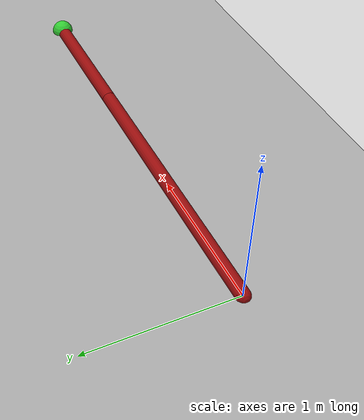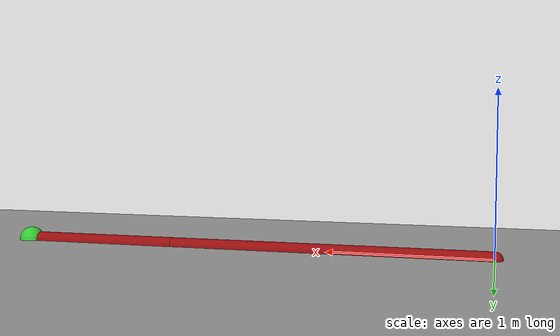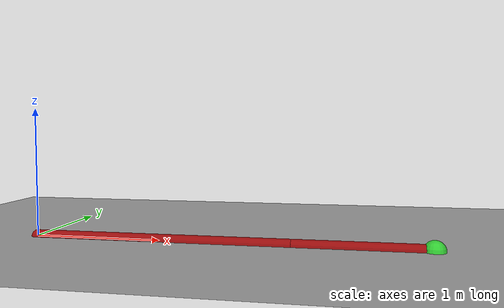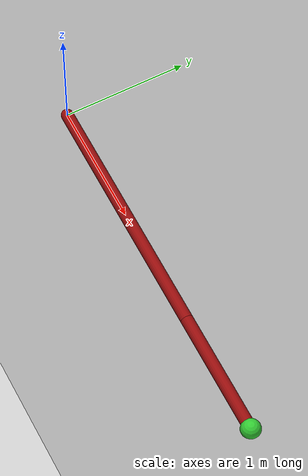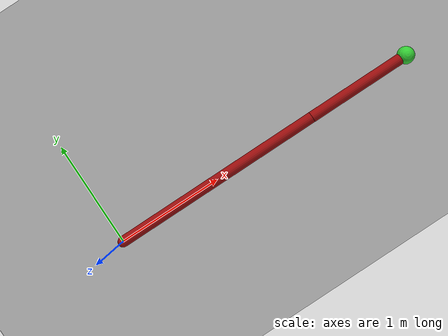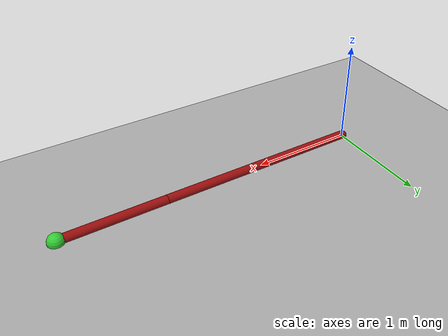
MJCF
<mujoco model="arm2d">
  <option integrator="RK4" timestep="0.002" gravity="0 0 0" viscosity="0.002"/>

  <visual>
    <global azimuth="120" elevation="-25" fovy="60" />
    <quality shadowsize="4096" offsamples="8" />
    <map znear="0.001" zfar="200" fogstart="6" fogend="30" />
  </visual>

  <asset>
    <texture name="sky" type="skybox" builtin="gradient" rgb1=".4 .6 .9" rgb2=".05 .05 .2"
             width="512" height="512"/>
    <texture name="floor_tex" type="2d" builtin="checker" width="512" height="512"
             rgb1="0.75 0.75 0.75" rgb2="0.55 0.55 0.55"/>
    <material name="floor_mat" texture="floor_tex" reflectance="0.15" shininess="0.4"/>
    <texture name="link_tex" type="cube" builtin="gradient" rgb1="0.8 0.1 0.1" rgb2="0.4 0.0 0.0"
            width="512" height="512"/>
    <material name="link_mat" texture="link_tex" specular="0.8" shininess="0.6" metallic="0.6"/>
    <material name="joint_mat" rgba="0.15 0.15 0.15 1.0" specular="0.2" shininess="0.4"/>
  </asset>

  <worldbody>
    <light pos="0 0 5" dir="0 0 -1" diffuse="0.8 0.8 0.8" specular="0.4 0.4 0.4"/>
    <light pos="-4 4 3" dir="0 -1 -0.5" diffuse="0.3 0.3 0.4" specular="0.2 0.2 0.3"/>
    <camera name="iso" pos="2.5 -4 3" quat="0.74 0.21 0.63 0.08" fovy="50"/>
    <!-- Base -->
    <geom name="base" type="plane" size="5 5 0.02" material="floor_mat"/>
    <body name="link1" pos="0 0 0">
      <joint name="j1" type="hinge" axis="0 0 1" damping="0.01" limited="false"/>
      <geom type="capsule" fromto="0 0 0  2 0 0" size="0.05" mass="1.0" material="link_mat"/>
      <body name="link2" pos="2 0 0">
        <joint name="j2" type="hinge" axis="0 0 1" damping="0.01" limited="false"/>
        <geom type="capsule" fromto="0 0 0  1 0 0" size="0.05" mass="0.8" material="link_mat"/>
        <!-- Add a small sphere at the end-effector -->
        <geom type="sphere" pos="1 0 0" size="0.08" rgba="0.2 0.8 0.2 1"/>
      </body>
    </body>
  </worldbody>

  <actuator>
   <motor name="m1" joint="j1" gear="50" ctrllimited="true" ctrlrange="-1 1"/>
   <motor name="m2" joint="j2" gear="50" ctrllimited="true" ctrlrange="-1 1"/>
  </actuator>

  <default>
    <joint armature="0.01" damping="0.01"/>
    <geom contype="1" conaffinity="1" condim="3" friction="0.4 0.1 0.1"/>
  </default>
</mujoco>
